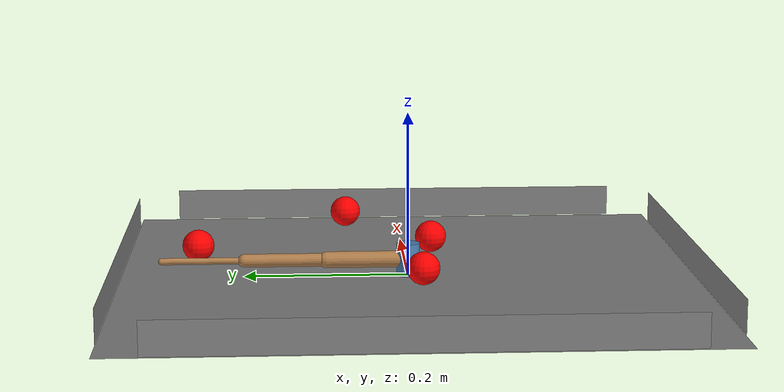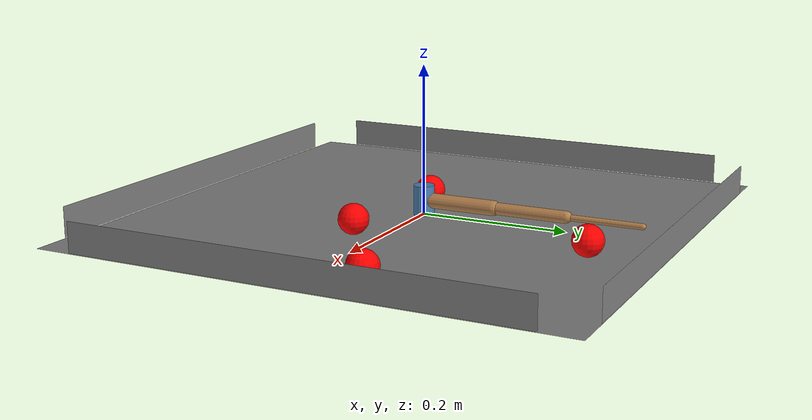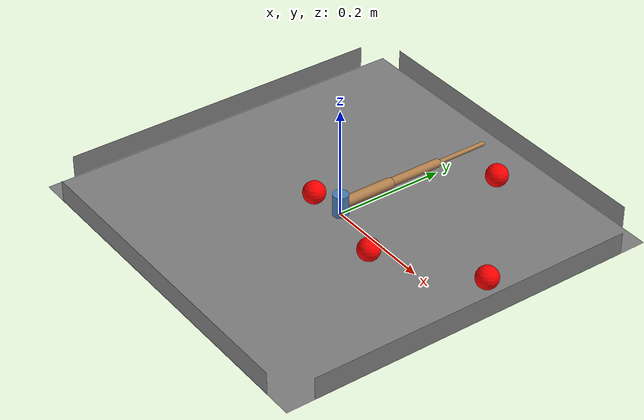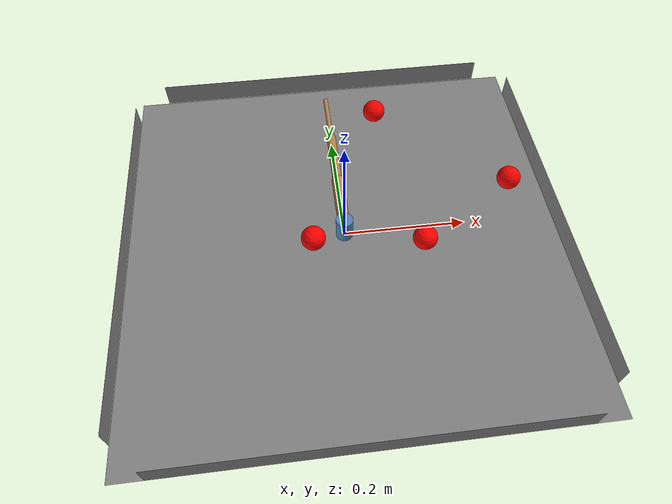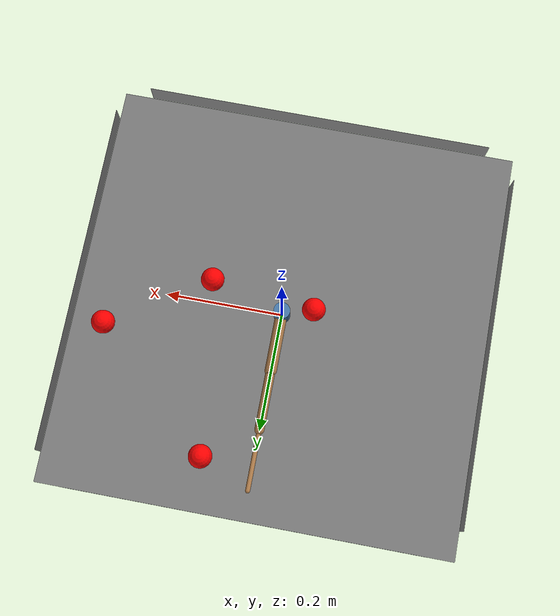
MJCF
<!--NOTE:-->
<!--COMPARE AT 10 and 100 SAMPLES-->

<mujoco model="planar point mass">
    <compiler angle="radian" />
    <option timestep="0.01" cone="elliptic" iterations="200" />
    <size njmax="500" nconmax="100" />
    <visual>
        <quality shadowsize="2048" />
        <headlight ambient="0.4 0.4 0.4" diffuse="0.8 0.8 0.8" specular="0.1 0.1 0.1" />
    </visual>
    <default class="main">
        <geom solimp="0 0.9 0.01 0.5 2" />
        <general ctrllimited="true" ctrlrange="-1 1" />
    </default>
    <asset>
        <texture type="skybox" name="skybox" builtin="gradient" mark="random" rgb1="0.4 0.6 0.8" rgb2="0 0 0" markrgb="1 1 1" width="800" height="4800" />
        <texture type="2d" name="grid" builtin="checker" mark="edge" rgb1="0.1 0.2 0.3" rgb2="0.2 0.3 0.4" markrgb="0.2 0.3 0.4" width="300" height="300" />
        <material name="grid" texture="grid" texuniform="true" reflectance="0.2" />
        <material name="self" rgba="0.7 0.5 0.3 1" />
        <material name="self_default" rgba="0.7 0.5 0.3 1" />
        <material name="self_highlight" rgba="0 0.5 0.3 1" />
        <material name="effector" rgba="0.7 0.4 0.2 1" />
        <material name="effector_default" rgba="0.7 0.4 0.2 1" />
        <material name="effector_highlight" rgba="0 0.5 0.3 1" />
        <material name="decoration" rgba="0.3 0.5 0.7 1" />
        <material name="eye" rgba="0 0.2 1 1" />
        <material name="target" rgba="0.6 0.3 0.3 1" />
        <material name="target_default" rgba="0.6 0.3 0.3 1" />
        <material name="target_highlight" rgba="0.6 0.3 0.3 0.4" />
    </asset>
    <worldbody>
        <geom name="ground" size="0.35 0.35 0.1" type="plane" />
        <geom name="wall_x" size="0.02 0.3 0.02" pos="-0.35 0 0.02" quat="0.707107 0 0.707107 0" type="plane" />
        <geom name="wall_y" size="0.3 0.02 0.02" pos="0 -0.35 0.02" quat="0.707107 -0.707107 0 0" type="plane" />
        <geom name="wall_neg_x" size="0.02 0.3 0.02" pos="0.35 0 0.02" quat="0.707107 0 -0.707107 0" type="plane" />
        <geom name="wall_neg_y" size="0.3 0.02 0.02" pos="0 0.35 0.02" quat="0.707107 0.707107 0 0" type="plane" />
        <camera name="fixed" pos="0 0 0.75" />
        <light name="light" pos="0 0 1" dir="0 0 -1" />
        <body name="proximal" pos="0 0 0.02" quat="0.707107 0.707107 0 0">
            <inertial pos="0 0 -0.0291932" mass="0.0591876" diaginertia="7.61519e-05 7.40747e-05 6.21876e-06" />
            <joint name="proximal" pos="0 0 0" axis="0 -1 0" ref="-1.5708" range="-130 -60" damping="0.25" />
            <geom name="proximal_decoration" size="0.014 0.02" quat="0.707107 0.707107 0 0" type="cylinder" material="decoration" />
            <geom name="proximal" size="0.01 0.05" pos="0 0 -0.05" type="capsule" material="self" />
            <body name="distal" pos="0 0 -0.1">
                <inertial pos="0 0 -0.05" mass="0.0217147" diaginertia="2.14541e-05 2.14541e-05 6.9487e-07" />
                <joint name="distal" pos="0 0 0" axis="0 -1 0" range="-45 45" damping="0.3" />
                <geom name="distal" size="0.008 0.05" pos="0 0 -0.05" type="capsule" material="self" />
                <body name="distal2" pos="0 0 -0.1">
                    <inertial pos="0 0 -0.05" mass="0.00522761" diaginertia="4.73273e-06 4.73273e-06 4.18209e-08" />
                    <joint name="distal2" pos="0 0 0" axis="0 -1 0" range="-45 45" damping="0.4" />
                    <geom name="distal2" size="0.004 0.05" pos="0 0 -0.05" type="capsule" material="self" />
                </body>
            </body>
        </body>
        <body name="k" pos="0.0870229 0.259853 0.02">
            <inertial pos="0 0 0" mass="0.0335103" diaginertia="5.36165e-06 5.36165e-06 5.36165e-06" />
            <geom size="0.02" rgba="1 0 0 1" />
        </body>
        <body name="a" pos="0.29284 0.0701363 0.02">
            <inertial pos="0 0 0" mass="0.0335103" diaginertia="5.36165e-06 5.36165e-06 5.36165e-06" />
            <geom size="0.02" rgba="1 0 0 1" />
        </body>
        <body name="b" pos="0.12615 -0.0358488 0.02">
            <inertial pos="0 0 0" mass="0.0335103" diaginertia="5.36165e-06 5.36165e-06 5.36165e-06" />
            <geom size="0.02" rgba="1 0 0 1" />
        </body>
        <body name="c" pos="-0.0520286 -0.015767 0.02">
            <inertial pos="0 0 0" mass="0.0335103" diaginertia="5.36165e-06 5.36165e-06 5.36165e-06" />
            <geom size="0.02" rgba="1 0 0 1" />
        </body>
    </worldbody>
    <actuator>
        <general name="proximal" joint="proximal" gear="0.35 0 0 0 0 0" />
        <general name="distal" joint="distal" gear="0.5 0 0 0 0 0" />
        <general name="distal2" joint="distal2" gear="0.6 0 0 0 0 0" />
    </actuator>
</mujoco>
